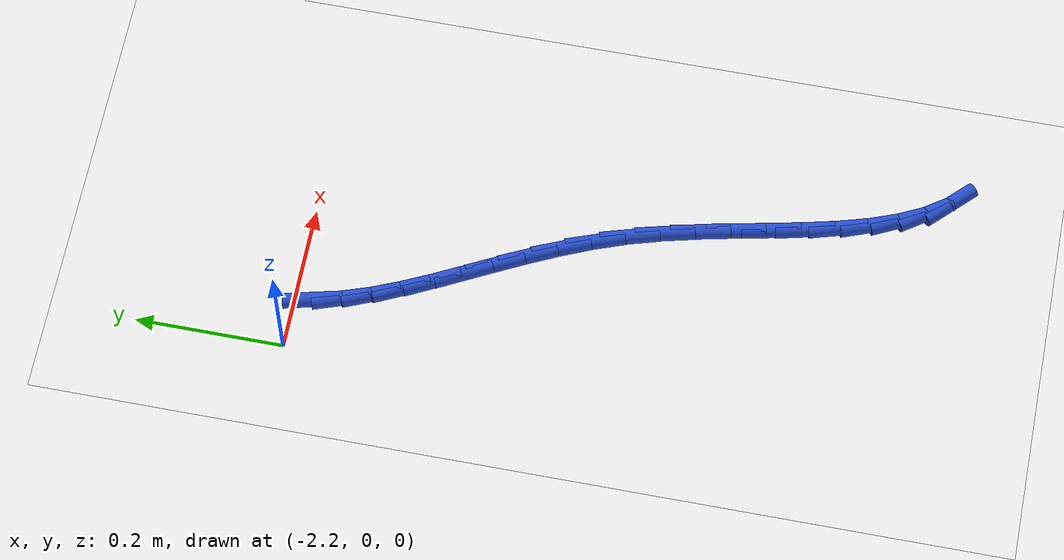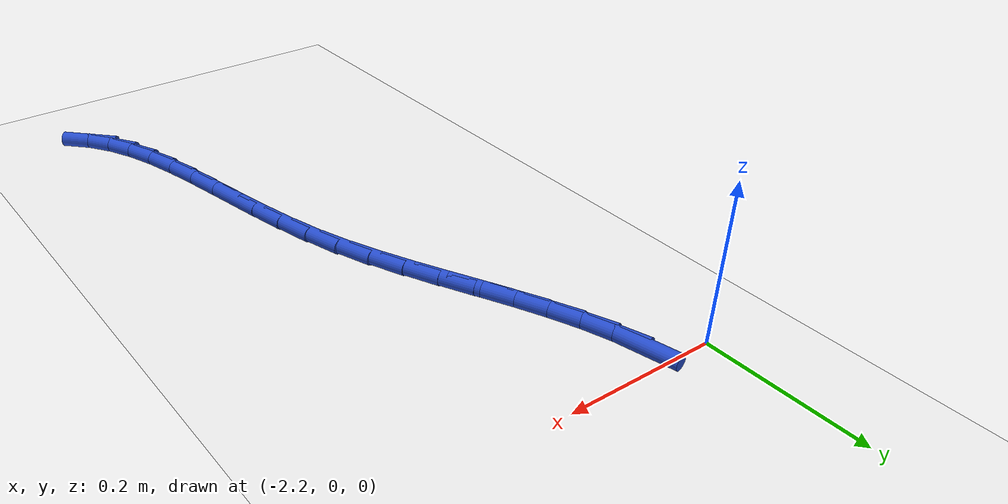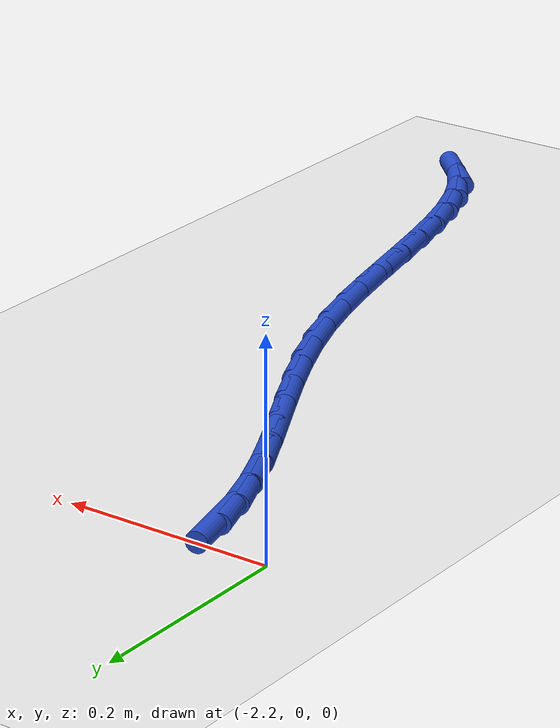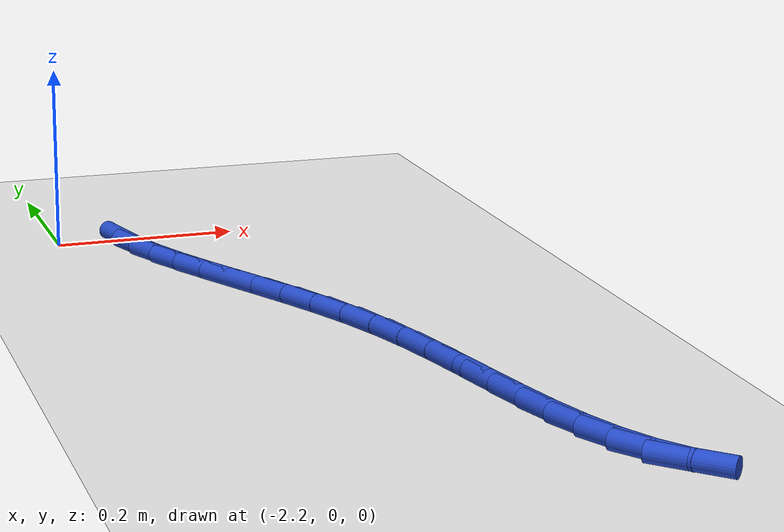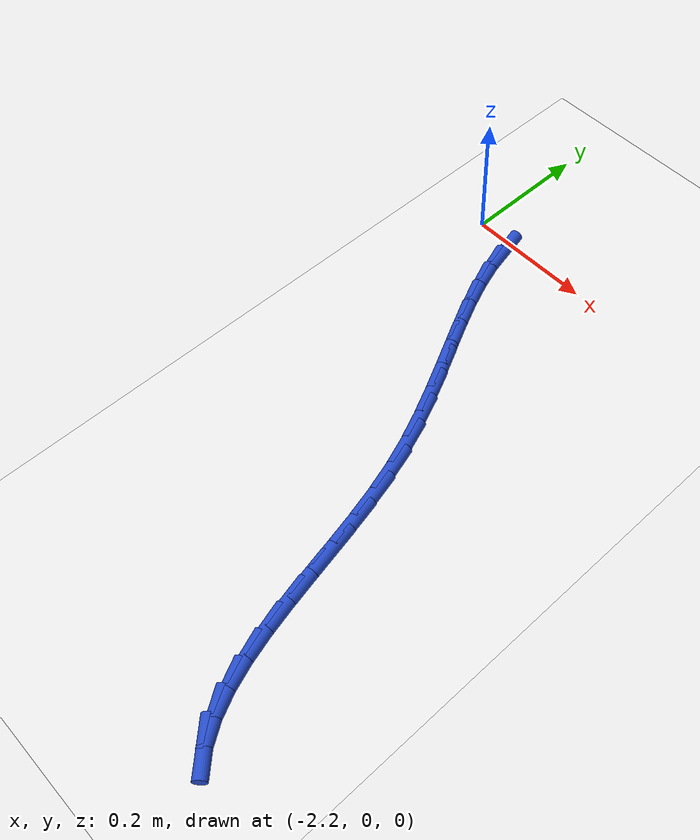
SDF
<sdf version="1.6">
 <world name="default">
  <model name="ground_plane">
   <static>1</static>
   <link name="link">
    <collision name="collision">
     <geometry><plane><normal>0 0 1</normal><size>100 100</size></plane></geometry>
     <surface><friction><ode><mu>100</mu><mu2>50</mu2></ode></friction></surface>
    </collision>
    <visual name="visual">
     <cast_shadows>0</cast_shadows>
     <geometry><plane><normal>0 0 1</normal><size>100 100</size></plane></geometry>
     <material>
      <script><uri>file://media/materials/scripts/gazebo.material</uri><name>Gazebo/WhiteGlow</name></script>
     </material>
    </visual>
   </link>
  </model>
  <model name="line">
   <link name="link_81">
    <pose>-2.131529857535093 -0.024437775899771058 0.01 0 1.57 -1.334235558929537</pose>
    <collision name="collision">
     <geometry><cylinder><radius>0.01</radius><length>0.08</length></cylinder></geometry>
    </collision>
    <visual name="visual">
     <material>
      <script><name>Gazebo/Blue</name><uri>file://media/materials/scripts/gazebo.material</uri></script>
     </material>
     <geometry><cylinder><radius>0.01</radius><length>0.08</length></cylinder></geometry>
    </visual>
   </link>
   <link name="link_82">
    <pose>-2.1226517827892137 -0.06126486702613187 0.01 0 1.57 -1.240645409337406</pose>
    <collision name="collision">
     <geometry><cylinder><radius>0.01</radius><length>0.08</length></cylinder></geometry>
    </collision>
    <visual name="visual">
     <material>
      <script><name>Gazebo/Blue</name><uri>file://media/materials/scripts/gazebo.material</uri></script>
     </material>
     <geometry><cylinder><radius>0.01</radius><length>0.08</length></cylinder></geometry>
    </visual>
   </link>
   <link name="link_83">
    <pose>-2.1099689929458276 -0.09827400157169495 0.01 0 1.57 -1.1719989666761668</pose>
    <collision name="collision">
     <geometry><cylinder><radius>0.01</radius><length>0.08</length></cylinder></geometry>
    </collision>
    <visual name="visual">
     <material>
      <script><name>Gazebo/Blue</name><uri>file://media/materials/scripts/gazebo.material</uri></script>
     </material>
     <geometry><cylinder><radius>0.01</radius><length>0.08</length></cylinder></geometry>
    </visual>
   </link>
   <link name="link_84">
    <pose>-2.094233930887227 -0.13561606671488663 0.01 0 1.57 -1.1258909225156795</pose>
    <collision name="collision">
     <geometry><cylinder><radius>0.01</radius><length>0.08</length></cylinder></geometry>
    </collision>
    <visual name="visual">
     <material>
      <script><name>Gazebo/Blue</name><uri>file://media/materials/scripts/gazebo.material</uri></script>
     </material>
     <geometry><cylinder><radius>0.01</radius><length>0.08</length></cylinder></geometry>
    </visual>
   </link>
   <link name="link_85">
    <pose>-2.0761990394957066 -0.17344194963413295 0.01 0 1.57 -1.099854105031861</pose>
    <collision name="collision">
     <geometry><cylinder><radius>0.01</radius><length>0.08</length></cylinder></geometry>
    </collision>
    <visual name="visual">
     <material>
      <script><name>Gazebo/Blue</name><uri>file://media/materials/scripts/gazebo.material</uri></script>
     </material>
     <geometry><cylinder><radius>0.01</radius><length>0.08</length></cylinder></geometry>
    </visual>
   </link>
   <link name="link_86">
    <pose>-2.0566167616535616 -0.21190253750785973 0.01 0 1.57 -1.091894826664745</pose>
    <collision name="collision">
     <geometry><cylinder><radius>0.01</radius><length>0.08</length></cylinder></geometry>
    </collision>
    <visual name="visual">
     <material>
      <script><name>Gazebo/Blue</name><uri>file://media/materials/scripts/gazebo.material</uri></script>
     </material>
     <geometry><cylinder><radius>0.01</radius><length>0.08</length></cylinder></geometry>
    </visual>
   </link>
   <link name="link_87">
    <pose>-2.036239540243084 -0.2511487175144936 0.01 0 1.57 -1.1006321199612654</pose>
    <collision name="collision">
     <geometry><cylinder><radius>0.01</radius><length>0.08</length></cylinder></geometry>
    </collision>
    <visual name="visual">
     <material>
      <script><name>Gazebo/Blue</name><uri>file://media/materials/scripts/gazebo.material</uri></script>
     </material>
     <geometry><cylinder><radius>0.01</radius><length>0.08</length></cylinder></geometry>
    </visual>
   </link>
   <link name="link_88">
    <pose>-2.0158198181465696 -0.2913313768324589 0.01 0 1.57 -1.1252442393054956</pose>
    <collision name="collision">
     <geometry><cylinder><radius>0.01</radius><length>0.08</length></cylinder></geometry>
    </collision>
    <visual name="visual">
     <material>
      <script><name>Gazebo/Blue</name><uri>file://media/materials/scripts/gazebo.material</uri></script>
     </material>
     <geometry><cylinder><radius>0.01</radius><length>0.08</length></cylinder></geometry>
    </visual>
   </link>
   <link name="link_89">
    <pose>-1.9961100382463117 -0.33260140264018256 0.01 0 1.57 -1.1653171853643698</pose>
    <collision name="collision">
     <geometry><cylinder><radius>0.01</radius><length>0.08</length></cylinder></geometry>
    </collision>
    <visual name="visual">
     <material>
      <script><name>Gazebo/Blue</name><uri>file://media/materials/scripts/gazebo.material</uri></script>
     </material>
     <geometry><cylinder><radius>0.01</radius><length>0.08</length></cylinder></geometry>
    </visual>
   </link>
   <link name="link_90">
    <pose>-1.9778626434246038 -0.3751096821160901 0.01 0 1.57 -1.2205861719337607</pose>
    <collision name="collision">
     <geometry><cylinder><radius>0.01</radius><length>0.08</length></cylinder></geometry>
    </collision>
    <visual name="visual">
     <material>
      <script><name>Gazebo/Blue</name><uri>file://media/materials/scripts/gazebo.material</uri></script>
     </material>
     <geometry><cylinder><radius>0.01</radius><length>0.08</length></cylinder></geometry>
    </visual>
   </link>
   <link name="link_91">
    <pose>-1.961828657487578 -0.41900633966605755 0.01 0 1.57 -1.281507079291379</pose>
    <collision name="collision">
     <geometry><cylinder><radius>0.01</radius><length>0.08</length></cylinder></geometry>
    </collision>
    <visual name="visual">
     <material>
      <script><name>Gazebo/Blue</name><uri>file://media/materials/scripts/gazebo.material</uri></script>
     </material>
     <geometry><cylinder><radius>0.01</radius><length>0.08</length></cylinder></geometry>
    </visual>
   </link>
   <link name="link_92">
    <pose>-1.948367962903756 -0.4642312559589593 0.01 0 1.57 -1.3268412020726612</pose>
    <collision name="collision">
     <geometry><cylinder><radius>0.01</radius><length>0.08</length></cylinder></geometry>
    </collision>
    <visual name="visual">
     <material>
      <script><name>Gazebo/Blue</name><uri>file://media/materials/scripts/gazebo.material</uri></script>
     </material>
     <geometry><cylinder><radius>0.01</radius><length>0.08</length></cylinder></geometry>
    </visual>
   </link>
   <link name="link_93">
    <pose>-1.93691858643361 -0.5102288018046927 0.01 0 1.57 -1.3546335553217443</pose>
    <collision name="collision">
     <geometry><cylinder><radius>0.01</radius><length>0.08</length></cylinder></geometry>
    </collision>
    <visual name="visual">
     <material>
      <script><name>Gazebo/Blue</name><uri>file://media/materials/scripts/gazebo.material</uri></script>
     </material>
     <geometry><cylinder><radius>0.01</radius><length>0.08</length></cylinder></geometry>
    </visual>
   </link>
   <link name="link_94">
    <pose>-1.9267858275888086 -0.5563720053293064 0.01 0 1.57 -1.3654440056105395</pose>
    <collision name="collision">
     <geometry><cylinder><radius>0.01</radius><length>0.08</length></cylinder></geometry>
    </collision>
    <visual name="visual">
     <material>
      <script><name>Gazebo/Blue</name><uri>file://media/materials/scripts/gazebo.material</uri></script>
     </material>
     <geometry><cylinder><radius>0.01</radius><length>0.08</length></cylinder></geometry>
    </visual>
   </link>
   <link name="link_95">
    <pose>-1.917274985881023 -0.6020338946588496 0.01 0 1.57 -1.3589214764690354</pose>
    <collision name="collision">
     <geometry><cylinder><radius>0.01</radius><length>0.08</length></cylinder></geometry>
    </collision>
    <visual name="visual">
     <material>
      <script><name>Gazebo/Blue</name><uri>file://media/materials/scripts/gazebo.material</uri></script>
     </material>
     <geometry><cylinder><radius>0.01</radius><length>0.08</length></cylinder></geometry>
    </visual>
   </link>
   <link name="link_96">
    <pose>-1.9076913608219221 -0.6465874979193708 0.01 0 1.57 -1.3336023030625928</pose>
    <collision name="collision">
     <geometry><cylinder><radius>0.01</radius><length>0.08</length></cylinder></geometry>
    </collision>
    <visual name="visual">
     <material>
      <script><name>Gazebo/Blue</name><uri>file://media/materials/scripts/gazebo.material</uri></script>
     </material>
     <geometry><cylinder><radius>0.01</radius><length>0.08</length></cylinder></geometry>
    </visual>
   </link>
   <link name="link_97">
    <pose>-1.897340251923177 -0.6894058432369168 0.01 0 1.57 -1.2866925966716467</pose>
    <collision name="collision">
     <geometry><cylinder><radius>0.01</radius><length>0.08</length></cylinder></geometry>
    </collision>
    <visual name="visual">
     <material>
      <script><name>Gazebo/Blue</name><uri>file://media/materials/scripts/gazebo.material</uri></script>
     </material>
     <geometry><cylinder><radius>0.01</radius><length>0.08</length></cylinder></geometry>
    </visual>
   </link>
   <link name="link_98">
    <pose>-1.8855269586964578 -0.7298619587375375 0.01 0 1.57 -1.2138969403373545</pose>
    <collision name="collision">
     <geometry><cylinder><radius>0.01</radius><length>0.08</length></cylinder></geometry>
    </collision>
    <visual name="visual">
     <material>
      <script><name>Gazebo/Blue</name><uri>file://media/materials/scripts/gazebo.material</uri></script>
     </material>
     <geometry><cylinder><radius>0.01</radius><length>0.08</length></cylinder></geometry>
    </visual>
   </link>
   <link name="link_99">
    <pose>-1.8715567806534337 -0.7673288725472802 0.01 0 1.57 -1.1096002698768548</pose>
    <collision name="collision">
     <geometry><cylinder><radius>0.01</radius><length>0.08</length></cylinder></geometry>
    </collision>
    <visual name="visual">
     <material>
      <script><name>Gazebo/Blue</name><uri>file://media/materials/scripts/gazebo.material</uri></script>
     </material>
     <geometry><cylinder><radius>0.01</radius><length>0.08</length></cylinder></geometry>
    </visual>
   </link>
   <link name="link_100">
    <pose>-1.8547350173057753 -0.8011796127921942 0.01 0 1.57 -0.9682148388084854</pose>
    <collision name="collision">
     <geometry><cylinder><radius>0.01</radius><length>0.08</length></cylinder></geometry>
    </collision>
    <visual name="visual">
     <material>
      <script><name>Gazebo/Blue</name><uri>file://media/materials/scripts/gazebo.material</uri></script>
     </material>
     <geometry><cylinder><radius>0.01</radius><length>0.08</length></cylinder></geometry>
    </visual>
   </link>
   <link name="link_101">
    <pose>-1.834366968165152 -0.830787207598328 0.01 0 1.57 -0.7880010176588067</pose>
    <collision name="collision">
     <geometry><cylinder><radius>0.01</radius><length>0.08</length></cylinder></geometry>
    </collision>
    <visual name="visual">
     <material>
      <script><name>Gazebo/Blue</name><uri>file://media/materials/scripts/gazebo.material</uri></script>
     </material>
     <geometry><cylinder><radius>0.01</radius><length>0.08</length></cylinder></geometry>
    </visual>
   </link>
  </model>
 </world>
</sdf>
